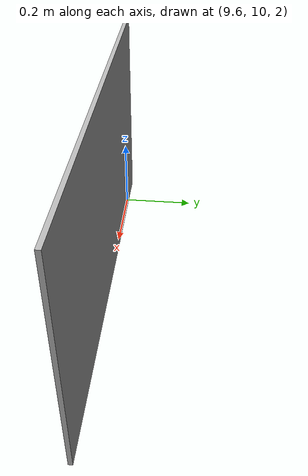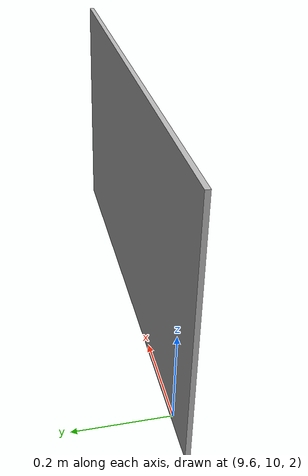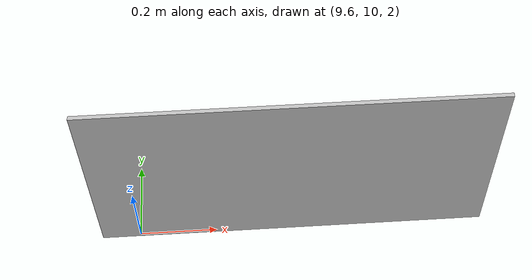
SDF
<sdf version="1.6">
 <world name="default"><include><pose>10 10 2 0 0 0</pose><uri>model://banner-2</uri></include></world>
</sdf>
